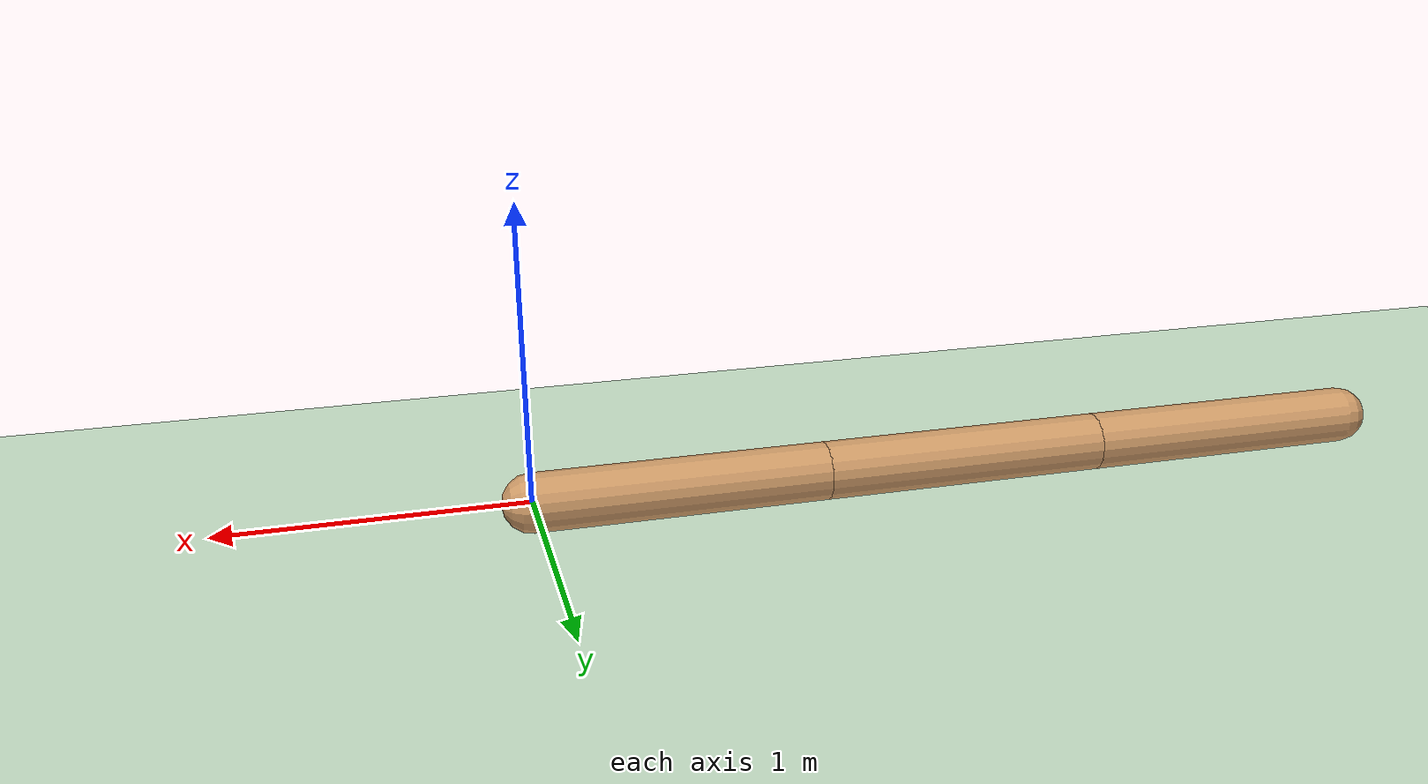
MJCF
<mujoco model="swimmer">
  <compiler inertiafromgeom="true" angle="degree" coordinate="local" />
  <option timestep="0.002" viscosity="1" collision="predefined">
    <flags warmstart="disable" />
  </option>
  <default>
    <geom contype='1' conaffinity='1' condim='1' rgba='0.8 0.6 .4 1'
      margin="0.001" solref=".02 1" solimp=".8 .8 .01" material="geom"/>
  </default>

    <worldbody>

    <geom name='floor' pos='0 0 -0.1' size='40 40 0.1' type='plane' conaffinity='1'  rgba='0.8 0.9 0.8 1' condim='3'/>
        <!--  ================= SWIMMER ================= /-->

    <body name="front" pos="0 0 0">
      <geom type="capsule" fromto="0 0 0 -1 0 0" size="0.1"/>
      <joint pos="0 0 0" type="slide" name="slider1" axis="1 0 0"/>
      <joint pos="0 0 0" type="slide" name="slider2" axis="0 1 0"/>
      <joint name="rot" type="hinge" pos="0 0 0" axis="0 0 1"/>

      <body name="mid" pos="-1 0 0">
        <geom type="capsule" fromto="0 0 0 -1 0 0" size="0.1"/>
        <joint name="rot2" type="hinge" pos="0 0 0" axis="0 0 1" range="-100 100" limited="true" />
        <body name="back" pos="-1 0 0">
          <geom type="capsule" fromto="0 0 0 -1 0 0" size="0.1"/>
          <joint name="rot3" type="hinge" pos="0 0 0" axis="0 0 1" range="-100 100" limited="true"/>
        </body>
      </body>
    </body>
    </worldbody>

  <actuator>
    <motor joint="rot2" ctrlrange="-30.0 30.0" ctrllimited="true"/>
    <motor joint="rot3" ctrlrange="-30.0 30.0" ctrllimited="true"/>
  </actuator>
  <asset>
            <texture type="skybox" builtin="gradient" width="100" height="100" rgb1=".4 .6 .8"
            rgb2="0 0 0"/>
        <texture name="texgeom" type="cube" builtin="flat" mark="cross" width="127" height="1278"
            rgb1="0.8 0.6 0.4" rgb2="0.8 0.6 0.4" markrgb="1 1 1" random="0.01"/>
        <texture name="texplane" type="2d" builtin="checker" rgb1=".2 .3 .4" rgb2=".1 0.15 0.2"
            width="100" height="100"/>

        <material name='MatPlane' reflectance='0.5' texture="texplane"/>
        <material name='geom' texture="texgeom" texuniform="true"/>
    </asset>
</mujoco>
